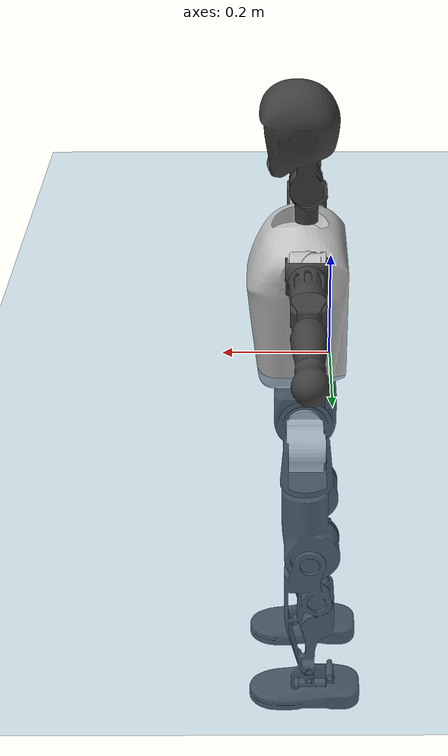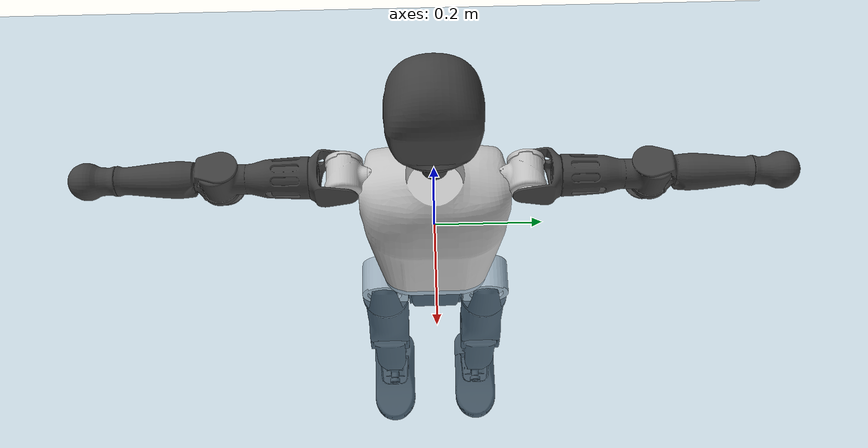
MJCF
<mujoco model="T1">
  <compiler angle="radian" assetdir="assets" balanceinertia="true" inertiafromgeom="false"/>

  <option timestep="0.005" density="1.2" viscosity="2e-05"/>

  <size nkey="1"/>

  <visual>
    <quality shadowsize="8192"/>
    <map shadowclip="0.5"/>
  </visual>

  <default>
    <default class="/">
      <joint armature="0.01" damping="0.01" frictionloss="0.1"/>
      <geom contype="0" conaffinity="0" group="1" solref="-1000 -80"/>
      <site size="0.01 0.005 0.005" group="5"/>
      <general forcelimited="true" biastype="affine" gainprm="25" biasprm="0 -25 -0.6"/>
      <default class="t1">
        <geom rgba="0.25 0.25 0.25 1"/>
        <default class="visual">
          <geom type="mesh" group="2"/>
        </default>
        <default class="collision">
          <geom group="3"/>
        </default>
        <default class="foot">
          <geom size="0.1115 0.05 0.015" type="box" condim="6" group="4" priority="1" solimp="0.015 1 0.015"/>
        </default>
        <default class="reward_collision_sphere">
          <geom group="5" rgba="1 0 0 1"/>
        </default>
      </default>
    </default>
  </default>

  <asset>
    <texture type="skybox" colorspace="auto" name="//unnamed_texture_0" builtin="gradient" rgb1="0.95 0.95 0.95" rgb2="0.95 0.95 0.95" width="100" height="600"/>
    <texture type="2d" colorspace="auto" name="texplane" builtin="checker" rgb1="0.345 0.575 0.748" rgb2="0.345 0.575 0.748" markrgb="1 1 1" width="512" height="512"/>
    <material name="MatPlane" class="/" texture="texplane" texuniform="true" texrepeat="2 2" specular="0.9"/>
    <mesh name="Trunk" class="/" file="Trunk.stl"/>
    <mesh name="H1" class="/" file="H1.stl"/>
    <mesh name="H2" class="/" file="H2.stl"/>
    <mesh name="AL1" class="/" file="AL1.stl"/>
    <mesh name="AL2" class="/" file="AL2.stl"/>
    <mesh name="AL3" class="/" file="AL3.stl"/>
    <mesh name="left_hand_link" class="/" file="left_hand_link.stl"/>
    <mesh name="AR1" class="/" file="AR1.stl"/>
    <mesh name="AR2" class="/" file="AR2.stl"/>
    <mesh name="AR3" class="/" file="AR3.stl"/>
    <mesh name="right_hand_link" class="/" file="right_hand_link.stl"/>
    <mesh name="Waist" class="/" file="Waist.stl"/>
    <mesh name="Hip_Pitch_Left" class="/" file="Hip_Pitch_Left.stl"/>
    <mesh name="Hip_Roll_Left" class="/" file="Hip_Roll_Left.stl"/>
    <mesh name="Hip_Yaw_Left" class="/" file="Hip_Yaw_Left.stl"/>
    <mesh name="Shank_Left" class="/" file="Shank_Left.stl"/>
    <mesh name="Ankle_Cross_Left" class="/" file="Ankle_Cross_Left.stl"/>
    <mesh name="left_foot_link" class="/" file="left_foot_link.stl"/>
    <mesh name="Hip_Pitch_Right" class="/" file="Hip_Pitch_Right.stl"/>
    <mesh name="Hip_Roll_Right" class="/" file="Hip_Roll_Right.stl"/>
    <mesh name="Hip_Yaw_Right" class="/" file="Hip_Yaw_Right.stl"/>
    <mesh name="Shank_Right" class="/" file="Shank_Right.stl"/>
    <mesh name="Ankle_Cross_Right" class="/" file="Ankle_Cross_Right.stl"/>
    <mesh name="right_foot_link" class="/" file="right_foot_link.stl"/>
  </asset>

  <worldbody>
    <geom name="floor" class="/" size="100 100 0.125" type="plane" group="0" material="MatPlane"/>
    <light name="toplight_shadow" class="/" pos="0 0 5" dir="0.0990148 0.0990148 -0.990148" type="directional" ambient="0.04 0.04 0.04" diffuse="0.55 0.55 0.55" specular="0.12 0.12 0.12"/>
    <light name="toplight_fill" class="/" pos="0 0 5" dir="0.0990148 0.0990148 -0.990148" type="directional" castshadow="false" ambient="0.04 0.04 0.04" diffuse="0.3 0.3 0.3" specular="0.08 0.08 0.08"/>
    <body name="trunk" childclass="t1" pos="-0.000131651 -0.000170705 -0.00173344" quat="0.999999 -0.000269844 0.000760831 -0.000601624">
      <inertial pos="0.0397293 -0.000507628 0.117717" quat="0.99996 -1.85927e-05 -0.00899519 8.83531e-05" mass="9.07654" diaginertia="0.0183094 0.054911 0.0951274"/>
      <joint name="//unnamed_joint_0" type="free" armature="0" damping="0" frictionloss="0"/>
      <geom name="//unnamed_geom_1" class="visual" rgba="0.76 0.76 0.76 1" mesh="Trunk"/>
      <geom name="//unnamed_geom_2" class="collision" size="0.0695643 0.0927523 0.139129" pos="0.0435677 0 0.133899" type="box"/>
      <geom name="//unnamed_geom_3" class="reward_collision_sphere" size="0.106665" pos="0.0435677 0 0.111583"/>
      <geom name="//unnamed_geom_4" class="reward_collision_sphere" size="0.0139129" pos="0.0435677 0.0799522 0"/>
      <geom name="//unnamed_geom_5" class="reward_collision_sphere" size="0.0139129" pos="0.0435677 -0.0799522 0"/>
      <geom name="//unnamed_geom_6" class="reward_collision_sphere" size="0.0139129" pos="0.0435677 0.100646 0.200849"/>
      <geom name="//unnamed_geom_7" class="reward_collision_sphere" size="0.0139129" pos="0.0435677 -0.100646 0.200849"/>
      <site name="imu" pos="-0.00833337 -0.00269423 0.00119663" size="0.00927523"/>
      <camera name="track" pos="0 -1.88123 0" quat="0.707107 0.707107 0 0" mode="trackcom"/>
      <camera name="ego_camera" pos="0.0885876 0 0.468648" quat="-0.5 -0.5 0.5 0.5"/>
      <body name="H1" pos="0.0445645 -0.000176916 0.271149" quat="1 0.000702322 0.000226553 -0.00032742">
        <inertial pos="-0.000536367 -0.00244741 0.0634778" quat="0.763008 -0.0125954 0.00216545 0.646263" mass="0.353392" diaginertia="4.83554e-05 0.000167153 0.000259171"/>
        <joint name="AAHead_yaw" pos="0 0 0" axis="-0.00223576 0.000826264 0.999997" range="-1.61378 1.58517" armature="0.00950156" damping="0.0134272" frictionloss="0.0880716"/>
        <geom name="//unnamed_geom_8" class="visual" mesh="H1"/>
        <body name="H2" pos="0.000733808 -0.000804871 0.0692638" quat="1 6.06609e-05 0.000817694 0.000540641">
          <inertial pos="0.00533902 0.00105775 0.11013" quat="0.988474 0.106127 -0.0747393 -0.0779096" mass="0.491013" diaginertia="0.000409691 0.00140787 0.0029807"/>
          <joint name="Head_pitch" pos="0 0 0" axis="-0.00825357 -0.999964 -0.00201888" range="-1.22944 0.385138" armature="0.00983715" damping="0.0153283" frictionloss="0.101513"/>
          <geom name="//unnamed_geom_9" class="visual" mesh="H2"/>
          <geom name="//unnamed_geom_10" class="collision" size="0.0742019" pos="0.00726128 0 0.122741"/>
          <geom name="//unnamed_geom_11" class="reward_collision_sphere" size="0.0834771" pos="0.0145226 0 0.111583"/>
        </body>
      </body>
      <body name="AL1" pos="0.0446099 0.100695 0.244522" quat="1 -0.000372693 0.000503968 8.51877e-05">
        <inertial pos="-0.002649 0.0430545 0.00083154" quat="0.504927 0.494577 -0.505476 0.49491" mass="0.425068" diaginertia="0.000274885 0.000983026 0.000505529"/>
        <joint name="Left_Shoulder_Pitch" pos="0 0 0" axis="0.00049855 1 -0.000170595" range="-3.31054 1.21879" armature="0.00943747" damping="0.00460587" frictionloss="0.0973416"/>
        <geom name="//unnamed_geom_12" class="visual" rgba="0.76 0.76 0.76 1" mesh="AL1"/>
        <body name="AL2" pos="0.00159842 0.0435582 -0.00158296" quat="1 0.000298023 -4.45007e-05 -0.000653575">
          <inertial pos="0.00367083 0.035926 -0.00151297" quat="0.48675 0.515281 -0.484956 0.512228" mass="0.128156" diaginertia="8.12488e-05 0.000254155 0.000302056"/>
          <joint name="Left_Shoulder_Roll" pos="0 0 0" axis="-0.999956 -0.00280427 -0.00891808" range="-1.57837 1.74852" armature="0.0094456" damping="0.00604134" frictionloss="0.0848115"/>
          <geom name="//unnamed_geom_13" class="visual" mesh="AL2"/>
          <body name="AL3" pos="-0.00105456 0.0575814 0.000500418" quat="1 0.000247212 0.000287706 -1.26703e-05">
            <inertial pos="-0.000116028 0.0802831 0.00101885" quat="0.705869 0.708342 0.000499766 -0.000613231" mass="0.812511" diaginertia="0.00256981 0.00937371 0.00108485"/>
            <joint name="Left_Elbow_Pitch" pos="0 0 0" axis="-0.00199746 -0.999977 -0.00654985" range="-2.27244 2.27305" armature="0.00946196" damping="0.0123391" frictionloss="0.0881646"/>
            <geom name="//unnamed_geom_14" class="visual" mesh="AL3"/>
            <geom name="//unnamed_geom_15" class="collision" size="0.0278257 0.0695643" pos="0 0.0470307 0" quat="0.707105 0.707108 0 0" type="cylinder"/>
            <geom name="//unnamed_geom_16" class="reward_collision_sphere" size="0.0333908"/>
            <body name="left_hand_link" pos="0.000554205 0.13694 0.00283263" quat="1 -0.000165396 0.0003793 0.000317455">
              <inertial pos="-5.23842e-05 0.102284 0.000731576" quat="0.707937 0.706276 0.000233262 -0.000333412" mass="0.270808" diaginertia="0.00164808 0.00613274 0.000381358"/>
              <joint name="Left_Elbow_Yaw" pos="0 0 0" axis="0.00947934 -0.00395984 0.999947" range="-2.46038 -0.00028859" armature="0.00926738" damping="0.0127962" frictionloss="0.0915966"/>
              <geom name="//unnamed_geom_17" class="visual" mesh="left_hand_link"/>
              <geom name="//unnamed_geom_18" class="collision" size="0.0278257 0.0811583" pos="0 0.12228 0" quat="0.707105 0.707108 0 0" type="cylinder"/>
              <geom name="//unnamed_geom_19" class="reward_collision_sphere" size="0.0463762"/>
              <geom name="//unnamed_geom_20" class="reward_collision_sphere" size="0.0324633" pos="0 0.103468 0"/>
              <geom name="//unnamed_geom_21" class="reward_collision_sphere" size="0.0324633" pos="0 0.202232 0"/>
            </body>
          </body>
        </body>
      </body>
      <body name="AR1" pos="0.0419196 -0.098755 0.245431" quat="1 0.000671777 0.000702264 -0.000160454">
        <inertial pos="-0.00134785 -0.0416297 -0.000532346" quat="0.507659 0.49572 -0.503314 0.493172" mass="0.428328" diaginertia="0.000276465 0.000963305 0.000514482"/>
        <joint name="Right_Shoulder_Pitch" pos="0 0 0" axis="-0.00298225 -0.999993 0.00228477" range="-1.2265 3.30594" armature="0.00920119" damping="0.00315383" frictionloss="0.0952087"/>
        <geom name="//unnamed_geom_22" class="visual" rgba="0.76 0.76 0.76 1" mesh="AR1"/>
        <body name="AR2" pos="-0.0002112 -0.0445248 -0.00150093" quat="1 -4.91191e-07 1.3267e-05 -6.26447e-06">
          <inertial pos="0.00379751 -0.0357577 0.000553186" quat="0.510844 0.48858 -0.511998 0.488043" mass="0.125769" diaginertia="8.30024e-05 0.000253388 0.000300841"/>
          <joint name="Right_Shoulder_Roll" pos="0 0 0" axis="-0.999997 -0.00210252 -0.00124733" range="-1.75346 1.57134" armature="0.0094179" damping="0.00133013" frictionloss="0.0983777"/>
          <geom name="//unnamed_geom_23" class="visual" mesh="AR2"/>
          <body name="AR3" pos="-0.00111796 -0.0560459 0.00056221" quat="1 -8.55028e-05 6.33444e-05 0.000271671">
            <inertial pos="-0.00231205 -0.0805667 -0.000371855" quat="0.708024 0.706188 0.000900957 2.17693e-05" mass="0.836365" diaginertia="0.00262325 0.00938892 0.00107237"/>
            <joint name="Right_Elbow_Pitch" pos="0 0 0" axis="-0.00335805 0.999992 0.00216796" range="-2.26803 2.28472" armature="0.00896408" damping="0.0117913" frictionloss="0.0902352"/>
            <geom name="//unnamed_geom_24" class="visual" mesh="AR3"/>
            <geom name="//unnamed_geom_25" class="collision" size="0.0278257 0.0695643" pos="0 -0.0470307 0" quat="0.707105 0.707108 0 0" type="cylinder"/>
            <geom name="//unnamed_geom_26" class="reward_collision_sphere" size="0.0333908"/>
            <body name="right_hand_link" pos="-0.000621669 -0.137919 0.00143952" quat="1 -0.000105956 9.76386e-05 -5.61578e-05">
              <inertial pos="-0.000151309 -0.102482 0.00166848" quat="0.703974 0.710222 0.00114869 -0.00195204" mass="0.263943" diaginertia="0.00164516 0.00613018 0.000371786"/>
              <joint name="Right_Elbow_Yaw" pos="0 0 0" axis="-0.00479996 0.00157 0.999987" stiffness="0.00108242" range="-0.0112361 2.43599" armature="0.00958037" damping="0.0113371" frictionloss="0.0945535"/>
              <geom name="//unnamed_geom_27" class="visual" mesh="right_hand_link"/>
              <geom name="//unnamed_geom_28" class="collision" size="0.0278257 0.0811583" pos="0 -0.12228 0" quat="0.707105 0.707108 0 0" type="cylinder"/>
              <geom name="//unnamed_geom_29" class="reward_collision_sphere" size="0.0463762"/>
              <geom name="//unnamed_geom_30" class="reward_collision_sphere" size="0.0324633" pos="0 -0.103468 0"/>
              <geom name="//unnamed_geom_31" class="reward_collision_sphere" size="0.0324633" pos="0 -0.202232 0"/>
            </body>
          </body>
        </body>
      </body>
      <body name="Waist" pos="0.0455402 -0.000222052 -0.129027" quat="1 -2.89631e-05 9.6764e-05 0.000171577">
        <inertial pos="0.0010929 -0.000816333 0.00721138" quat="0.983549 -0.000457876 -0.180631 0.00175047" mass="2.05288" diaginertia="0.00108613 0.00396864 0.00823313"/>
        <joint name="Waist" pos="0 0 0" axis="-0.00255183 -0.00267723 0.999993" range="-1.57625 1.5556" armature="0.00908062" damping="0" frictionloss="0.0917988"/>
        <geom name="//unnamed_geom_32" class="visual" mesh="Waist"/>
        <body name="Hip_Pitch_Left" pos="0.000422378 0.101476 0.00104978" quat="1 3.75105e-06 6.72774e-06 -1.20797e-05">
          <inertial pos="0.00101306 -0.00727409 -0.0223812" quat="0.975183 0.220902 0.0147975 -0.000658759" mass="0.82874" diaginertia="0.000362528 0.00107565 0.00216711"/>
          <joint name="Left_Hip_Pitch" pos="0 0 0" axis="-0.00251787 0.999988 0.00417182" range="-1.78324 1.56749" armature="0.00930707" damping="0.00596742" frictionloss="0.0880763"/>
          <geom name="//unnamed_geom_33" class="visual" rgba="0.76 0.76 0.76 1" mesh="Hip_Pitch_Left"/>
          <body name="Hip_Roll_Left" pos="-0.000557071 -0.000294904 -0.0230611" quat="1 -0.000186413 -1.81974e-05 3.76073e-06">
            <inertial pos="0.000994998 -1.66706e-05 -0.0598214" quat="0.708046 -0.0103508 -0.00483798 0.706074" mass="0.306349" diaginertia="0.000353296 0.00111404 0.000890736"/>
            <joint name="Left_Hip_Roll" pos="0 0 0" axis="-0.999983 -0.00150972 -0.00555062" stiffness="5.50489e-05" range="-1.56403 0.202008" armature="0.00929011" damping="0.0100995" frictionloss="0.0918217"/>
            <geom name="//unnamed_geom_34" class="visual" mesh="Hip_Roll_Left"/>
            <geom name="//unnamed_geom_35" class="reward_collision_sphere" size="0.0510138"/>
            <body name="Hip_Yaw_Left" pos="0.0003496 -0.000223587 -0.0900211" quat="1 -1.11222e-06 4.77391e-05 -6.13556e-05">
              <inertial pos="-0.00542265 -0.000700291 -0.101287" quat="0.696616 -0.029601 -0.0335162 0.716049" mass="1.72114" diaginertia="0.00531514 0.0183601 0.00446104"/>
              <joint name="Left_Hip_Yaw" pos="0 0 0" axis="3.78062e-05 -2.83942e-05 -1" range="-0.99791 1.01525" armature="0.00911958" damping="0.0107587" frictionloss="0.0867523"/>
              <geom name="//unnamed_geom_36" class="visual" mesh="Hip_Yaw_Left"/>
              <geom name="//unnamed_geom_37" class="collision" size="0.0463762 0.0742019" type="cylinder"/>
              <body name="Shank_Left" pos="-0.00918775 0.00148519 -0.149223" quat="1 -0.000195531 -0.000850466 0.000424854">
                <inertial pos="-0.0051689 -0.00166796 -0.137727" quat="0.997978 -0.00123288 -0.0212823 0.0598813" mass="1.37176" diaginertia="0.00700092 0.0250346 0.00318584"/>
                <joint name="Left_Knee_Pitch" pos="0 0 0" axis="0.000224928 1 -0.000651115" range="0.0106755 2.33921" armature="0.00938718" damping="0.0126029" frictionloss="0.0859028"/>
                <geom name="//unnamed_geom_38" class="visual" mesh="Shank_Left"/>
                <geom name="//unnamed_geom_39" class="collision" size="0.0463762 0.0695643" pos="0 0 -0.133899" type="cylinder"/>
                <geom name="//unnamed_geom_40" class="reward_collision_sphere" size="0.060289"/>
                <body name="Ankle_Cross_Left" pos="-0.00215878 0.000742207 -0.313376" quat="1 -1.12213e-05 6.31585e-05 -2.35306e-05">
                  <inertial pos="-0.002045 -0.00027397 -0.00872601" quat="0.438922 0.558573 0.547646 0.442073" mass="0.0569836" diaginertia="5.84196e-06 1.8565e-05 1.94467e-05"/>
                  <joint name="Left_Ankle_Pitch" pos="0 0 0" axis="-0.000311072 0.999997 -0.00240831" range="-0.87005 0.324438" armature="0.00933124" damping="0.00561979" frictionloss="0.0942689"/>
                  <geom name="//unnamed_geom_41" class="visual" mesh="Ankle_Cross_Left"/>
                  <body name="left_foot_link" pos="-0.000152146 -1.34096e-05 -0.0140084" quat="1 1.53503e-07 1.72257e-05 -0.000186959">
                    <inertial pos="-0.000188035 1.18131e-05 -0.00803471" quat="-0.000257042 0.620743 -0.00030519 0.784014" mass="0.554569" diaginertia="0.000549059 0.00176869 0.0038607"/>
                    <joint name="Left_Ankle_Roll" pos="0 0 0" axis="-1 -0.000181885 -1.25398e-05" range="-0.444608 0.420804" armature="0.00926509" damping="0.0187507" frictionloss="0.0923448"/>
                    <geom name="//unnamed_geom_42" class="visual" mesh="left_foot_link"/>
                    <geom name="left_foot" class="foot" size="0.107708 0.0508265 0.0138467" pos="0.00726128 0 -0.0167374"/>
                    <geom name="//unnamed_geom_44" class="reward_collision_sphere" size="0.0482312" pos="0.00726128 0 -0.0167374"/>
                    <geom name="//unnamed_geom_45" class="reward_collision_sphere" size="0.0278257" pos="0.0689822 -0.0216341 -0.0167374"/>
                    <geom name="//unnamed_geom_46" class="reward_collision_sphere" size="0.0278257" pos="-0.050829 -0.0216341 -0.0167374"/>
                    <site name="left_foot" class="foot" pos="0.00726128 0 -0.0167374" size="0.00927523"/>
                  </body>
                </body>
              </body>
            </body>
          </body>
        </body>
        <body name="Hip_Pitch_Right" pos="-0.00151744 -0.0994085 0.00102301" quat="1 -0.000367818 5.1495e-05 0.000345549">
          <inertial pos="0.000439816 0.00516941 -0.0205094" quat="0.974478 -0.223911 0.0157442 -0.00276859" mass="0.809034" diaginertia="0.000363976 0.0010712 0.00212436"/>
          <joint name="Right_Hip_Pitch" pos="0 0 0" axis="0.000710675 -0.999999 -0.000838835" range="-1.57677 1.77441" armature="0.00933569" damping="0.00507008" frictionloss="0.101404"/>
          <geom name="//unnamed_geom_47" class="visual" rgba="0.76 0.76 0.76 1" mesh="Hip_Pitch_Right"/>
          <body name="Hip_Roll_Right" pos="-0.00195386 -0.000739992 -0.0216718" quat="1 0.000137666 -2.37813e-05 -2.27569e-05">
            <inertial pos="0.00169444 -1.6019e-05 -0.0607498" quat="0.707147 -0.00620317 -0.00583372 0.707016" mass="0.307191" diaginertia="0.000342026 0.00110272 0.000879653"/>
            <joint name="Right_Hip_Roll" pos="0 0 0" axis="-1 0.000326421 0.00089286" range="-0.203838 1.58943" armature="0.00946387" damping="0.013487" frictionloss="0.0967535"/>
            <geom name="//unnamed_geom_48" class="visual" mesh="Hip_Roll_Right"/>
            <geom name="//unnamed_geom_49" class="reward_collision_sphere" size="0.0510138"/>
            <body name="Hip_Yaw_Right" pos="0.000946611 0.000642016 -0.0907417" quat="1 -4.46586e-05 -0.000176255 0.000177476">
              <inertial pos="-0.00575463 0.00169257 -0.0996537" quat="0.714596 -0.031201 -0.0338853 0.698019" mass="1.70773" diaginertia="0.00515364 0.0179674 0.00442634"/>
              <joint name="Right_Hip_Yaw" pos="0 0 0" axis="-0.00159891 -0.00161381 -0.999997" stiffness="0.00358782" range="-1.00353 1.00582" armature="0.00924738" damping="0.0122141" frictionloss="0.0931823"/>
              <geom name="//unnamed_geom_50" class="visual" mesh="Hip_Yaw_Right"/>
              <geom name="//unnamed_geom_51" class="collision" size="0.0463762 0.0742019" type="cylinder"/>
              <body name="Shank_Right" pos="-0.00909798 -0.00113777 -0.14797" quat="1 -2.6305e-05 -1.18246e-05 1.42955e-05">
                <inertial pos="-0.00677943 -0.00131721 -0.13691" quat="0.999539 -0.00215767 -0.0215443 -0.0212708" mass="1.39535" diaginertia="0.006951 0.0252595 0.00333037"/>
                <joint name="Right_Knee_Pitch" pos="0 0 0" axis="-0.00225893 -0.999988 0.00431809" range="-2.34189 -0.0316555" armature="0.00919107" damping="0.00559983" frictionloss="0.0923323"/>
                <geom name="//unnamed_geom_52" class="visual" mesh="Shank_Right"/>
                <geom name="//unnamed_geom_53" class="collision" size="0.0463762 0.0695643" pos="0 0 -0.133899" type="cylinder"/>
                <geom name="//unnamed_geom_54" class="reward_collision_sphere" size="0.060289"/>
                <body name="Ankle_Cross_Right" pos="0.0011253 0.000336751 -0.313846" quat="1 0.000413303 0.000263189 -0.000248515">
                  <inertial pos="-0.0028872 0.00100211 -0.00946948" quat="0.445597 0.549299 0.550345 0.44366" mass="0.0591484" diaginertia="5.89774e-06 1.89532e-05 1.9749e-05"/>
                  <joint name="Right_Ankle_Pitch" pos="0 0 0" axis="7.58942e-06 -1 -3.35551e-05" range="-0.306443 0.863348" armature="0.00922696" damping="0.00346898" frictionloss="0.093639"/>
                  <geom name="//unnamed_geom_55" class="visual" mesh="Ankle_Cross_Right"/>
                  <body name="right_foot_link" pos="0.00133897 -0.000312749 -0.0136689" quat="1 -9.2766e-05 -1.30298e-05 5.31471e-05">
                    <inertial pos="0.000203686 0.000968846 -0.00817959" quat="-0.000993526 0.621445 -0.000556946 0.783457" mass="0.546558" diaginertia="0.000547247 0.00176312 0.00382301"/>
                    <joint name="Right_Ankle_Roll" pos="0 0 0" axis="-1 -9.00746e-06 0.000291622" range="-0.425729 0.437212" armature="0.00947252" damping="0.0136222" frictionloss="0.102906"/>
                    <geom name="//unnamed_geom_56" class="visual" mesh="right_foot_link"/>
                    <geom name="right_foot" class="foot" size="0.102516 0.0417186 0.0152009" pos="0.00726128 0 -0.0167374"/>
                    <geom name="//unnamed_geom_58" class="reward_collision_sphere" size="0.0371009"/>
                    <geom name="//unnamed_geom_59" class="reward_collision_sphere" size="0.0278257" pos="0.00726128 0 -0.0167374"/>
                    <geom name="//unnamed_geom_60" class="reward_collision_sphere" size="0.0278257" pos="0.0689822 0.0216341 -0.0167374"/>
                    <geom name="//unnamed_geom_61" class="reward_collision_sphere" size="0.0278257" pos="-0.050829 0.0216341 -0.0167374"/>
                    <site name="right_foot" class="foot" pos="0.00726128 0 -0.0167374" size="0.00927523"/>
                  </body>
                </body>
              </body>
            </body>
          </body>
        </body>
      </body>
    </body>
  </worldbody>

  <contact>
    <pair class="/" geom1="floor" geom2="left_foot" name="//unnamed_contact_0"/>
    <pair class="/" geom1="floor" geom2="right_foot" name="//unnamed_contact_1"/>
  </contact>

  <actuator>
    <general name="AAHead_yaw" class="/" joint="AAHead_yaw" forcerange="-6.54544 6.54544" gainprm="23.4438" biasprm="0 -23.4438 -0.542883"/>
    <general name="Head_pitch" class="/" joint="Head_pitch" forcerange="-6.26787 6.26787" gainprm="23.4438" biasprm="0 -23.4438 -0.542883"/>
    <general name="Left_Shoulder_Pitch" class="/" joint="Left_Shoulder_Pitch" forcerange="-17.2102 17.2102" gainprm="23.4438" biasprm="0 -23.4438 -0.542883"/>
    <general name="Left_Shoulder_Roll" class="/" joint="Left_Shoulder_Roll" forcerange="-16.2751 16.2751" gainprm="23.4438" biasprm="0 -23.4438 -0.542883"/>
    <general name="Left_Elbow_Pitch" class="/" joint="Left_Elbow_Pitch" forcerange="-16.0769 16.0769" gainprm="23.4438" biasprm="0 -23.4438 -0.542883"/>
    <general name="Left_Elbow_Yaw" class="/" joint="Left_Elbow_Yaw" forcerange="-16.7739 16.7739" gainprm="23.4438" biasprm="0 -23.4438 -0.542883"/>
    <general name="Right_Shoulder_Pitch" class="/" joint="Right_Shoulder_Pitch" forcerange="-16.6254 16.6254" gainprm="23.4438" biasprm="0 -23.4438 -0.542883"/>
    <general name="Right_Shoulder_Roll" class="/" joint="Right_Shoulder_Roll" forcerange="-16.4508 16.4508" gainprm="23.4438" biasprm="0 -23.4438 -0.542883"/>
    <general name="Right_Elbow_Pitch" class="/" joint="Right_Elbow_Pitch" forcerange="-16.8185 16.8185" gainprm="23.4438" biasprm="0 -23.4438 -0.542883"/>
    <general name="Right_Elbow_Yaw" class="/" joint="Right_Elbow_Yaw" forcerange="-16.7945 16.7945" gainprm="23.4438" biasprm="0 -23.4438 -0.542883"/>
    <general name="Waist" class="/" joint="Waist" forcerange="-28.1238 28.1238" gainprm="23.4438" biasprm="0 -23.4438 -0.542883"/>
    <general name="Left_Hip_Pitch" class="/" joint="Left_Hip_Pitch" forcerange="-41.9996 41.9996" gainprm="23.4438" biasprm="0 -23.4438 -0.542883"/>
    <general name="Left_Hip_Roll" class="/" joint="Left_Hip_Roll" forcerange="-29.7782 29.7782" gainprm="23.4438" biasprm="0 -23.4438 -0.542883"/>
    <general name="Left_Hip_Yaw" class="/" joint="Left_Hip_Yaw" forcerange="-28.1667 28.1667" gainprm="23.4438" biasprm="0 -23.4438 -0.542883"/>
    <general name="Left_Knee_Pitch" class="/" joint="Left_Knee_Pitch" forcerange="-58.7416 58.7416" gainprm="23.4438" biasprm="0 -23.4438 -0.542883"/>
    <general name="Left_Ankle_Pitch" class="/" joint="Left_Ankle_Pitch" forcerange="-18.8378 18.8378" gainprm="23.4438" biasprm="0 -23.4438 -0.542883"/>
    <general name="Left_Ankle_Roll" class="/" joint="Left_Ankle_Roll" forcerange="-14.2503 14.2503" gainprm="23.4438" biasprm="0 -23.4438 -0.542883"/>
    <general name="Right_Hip_Pitch" class="/" joint="Right_Hip_Pitch" forcerange="-39.7912 39.7912" gainprm="23.4438" biasprm="0 -23.4438 -0.542883"/>
    <general name="Right_Hip_Roll" class="/" joint="Right_Hip_Roll" forcerange="-27.3089 27.3089" gainprm="23.4438" biasprm="0 -23.4438 -0.542883"/>
    <general name="Right_Hip_Yaw" class="/" joint="Right_Hip_Yaw" forcerange="-27.6737 27.6737" gainprm="23.4438" biasprm="0 -23.4438 -0.542883"/>
    <general name="Right_Knee_Pitch" class="/" joint="Right_Knee_Pitch" forcerange="-55.7577 55.7577" gainprm="23.4438" biasprm="0 -23.4438 -0.542883"/>
    <general name="Right_Ankle_Pitch" class="/" joint="Right_Ankle_Pitch" forcerange="-18.7744 18.7744" gainprm="23.4438" biasprm="0 -23.4438 -0.542883"/>
    <general name="Right_Ankle_Roll" class="/" joint="Right_Ankle_Roll" forcerange="-13.7133 13.7133" gainprm="23.4438" biasprm="0 -23.4438 -0.542883"/>
  </actuator>

  <sensor>
    <gyro site="imu" name="imu_angular_velocity"/>
    <velocimeter site="imu" name="imu_linear_velocity"/>
    <framelinvel objtype="site" objname="left_foot" name="left_foot_global_linear_velocity"/>
    <framelinvel objtype="site" objname="right_foot" name="right_foot_global_linear_velocity"/>
  </sensor>

  <keyframe>
    <key name="home" qpos="0 0 0.6385 1 0 0 0 0 0 0 1.4 0 -0.4 0 -1.4 0 0.4 0 -0.4 0 0 0.8 -0.4 0 0.4 0 0 -0.8 0.4 0"/>
  </keyframe>
</mujoco>
